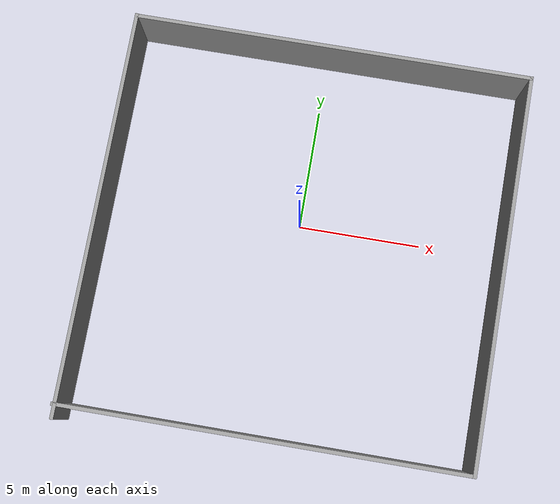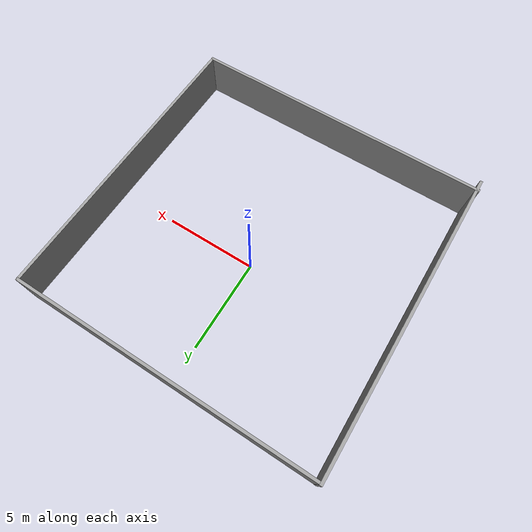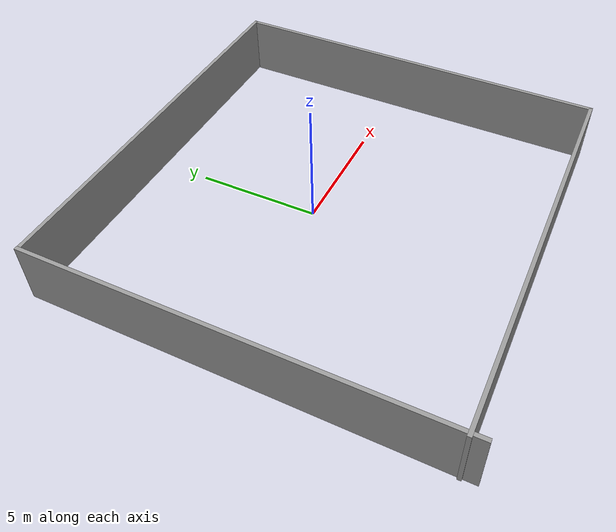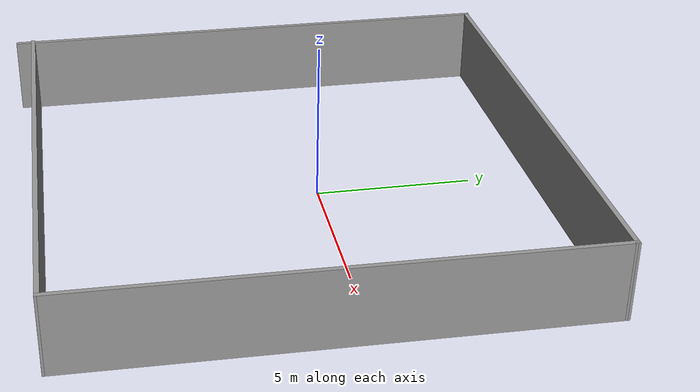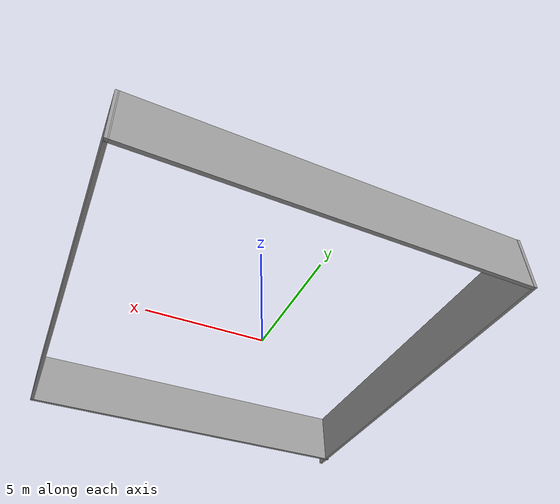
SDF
<?xml version='1.0'?>
<sdf version='1.7'>
  <model name='room'>
    <pose>0.129395 -1.07761 0 0 -0 0</pose>
    <link name='Wall_10'>
      <collision name='Wall_10_Collision'>
        <geometry>
          <box>
            <size>16.25 0.15 2.5</size>
          </box>
        </geometry>
        <pose>0 0 1.25 0 -0 0</pose>
      </collision>
      <visual name='Wall_10_Visual'>
        <pose>0 0 1.25 0 -0 0</pose>
        <geometry>
          <box>
            <size>16.25 0.15 2.5</size>
          </box>
        </geometry>
        <material>
          <script>
            <uri>file://media/materials/scripts/gazebo.material</uri>
            <name>Gazebo/Grey</name>
          </script>
          <ambient>1 1 1 1</ambient>
        </material>
        <meta>
          <layer>0</layer>
        </meta>
      </visual>
      <pose>0.080956 8.16143 0 0 -0 0</pose>
    </link>
    <link name='Wall_11'>
      <collision name='Wall_11_Collision'>
        <geometry>
          <box>
            <size>15.9862 0.15 2.5</size>
          </box>
        </geometry>
        <pose>0 0 1.25 0 -0 0</pose>
      </collision>
      <visual name='Wall_11_Visual'>
        <pose>0 0 1.25 0 -0 0</pose>
        <geometry>
          <box>
            <size>15.9862 0.15 2.5</size>
          </box>
        </geometry>
        <material>
          <script>
            <uri>file://media/materials/scripts/gazebo.material</uri>
            <name>Gazebo/Grey</name>
          </script>
          <ambient>1 1 1 1</ambient>
        </material>
        <meta>
          <layer>0</layer>
        </meta>
      </visual>
      <pose>8.04962 0.243453 0 0 -0 -1.58107</pose>
    </link>
    <link name='Wall_5'>
      <collision name='Wall_5_Collision'>
        <geometry>
          <box>
            <size>16.25 0.15 2.5</size>
          </box>
        </geometry>
        <pose>0 0 1.25 0 -0 0</pose>
      </collision>
      <visual name='Wall_5_Visual'>
        <pose>0 0 1.25 0 -0 0</pose>
        <geometry>
          <box>
            <size>16.25 0.15 2.5</size>
          </box>
        </geometry>
        <material>
          <script>
            <uri>file://media/materials/scripts/gazebo.material</uri>
            <name>Gazebo/Grey</name>
          </script>
          <ambient>1 1 1 1</ambient>
        </material>
        <meta>
          <layer>0</layer>
        </meta>
      </visual>
      <pose>-0.08172 -7.67453 0 0 -0 3.14159</pose>
    </link>
    <link name='Wall_8'>
      <collision name='Wall_8_Collision'>
        <geometry>
          <box>
            <size>16.5 0.15 2.5</size>
          </box>
        </geometry>
        <pose>0 0 1.25 0 -0 0</pose>
      </collision>
      <visual name='Wall_8_Visual'>
        <pose>0 0 1.25 0 -0 0</pose>
        <geometry>
          <box>
            <size>16.5 0.15 2.5</size>
          </box>
        </geometry>
        <material>
          <script>
            <uri>file://media/materials/scripts/gazebo.material</uri>
            <name>Gazebo/Grey</name>
          </script>
          <ambient>1 1 1 1</ambient>
        </material>
        <meta>
          <layer>0</layer>
        </meta>
      </visual>
      <pose>-8.0623 0 0 0 -0 1.5708</pose>
    </link>
    <static>1</static>
  </model>
</sdf>
